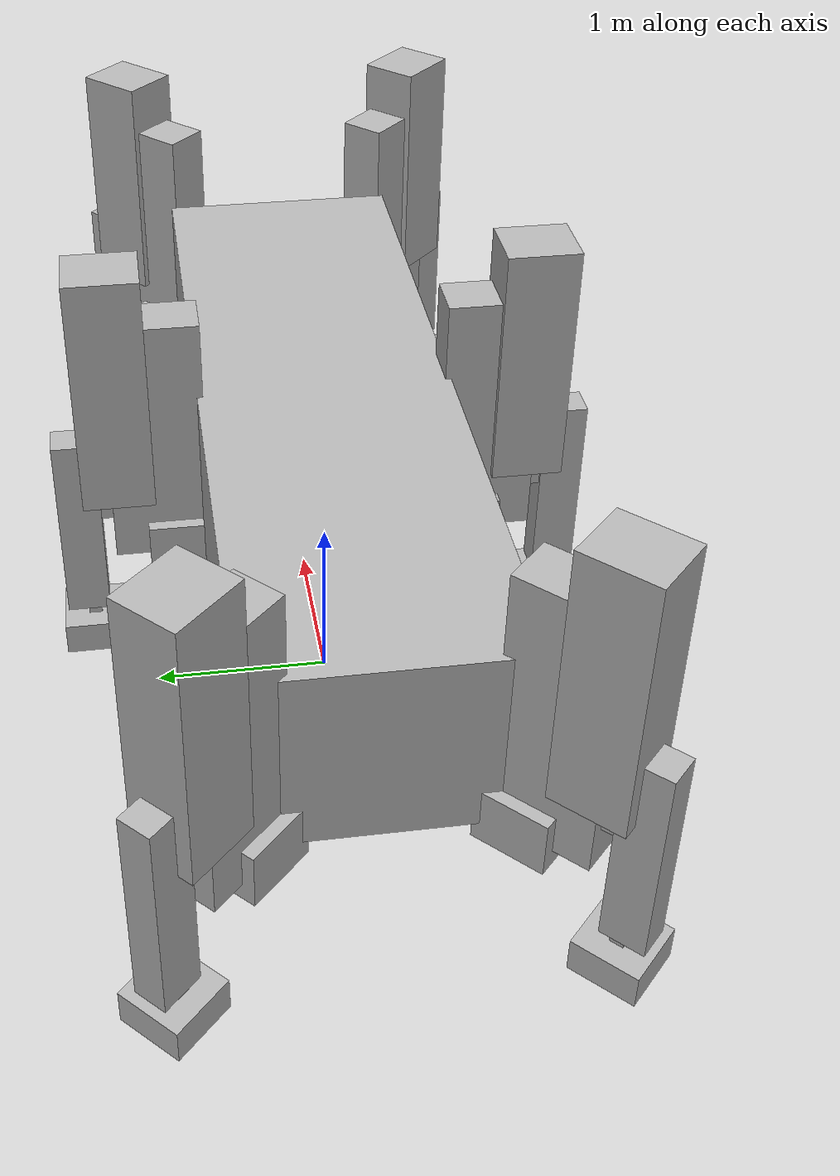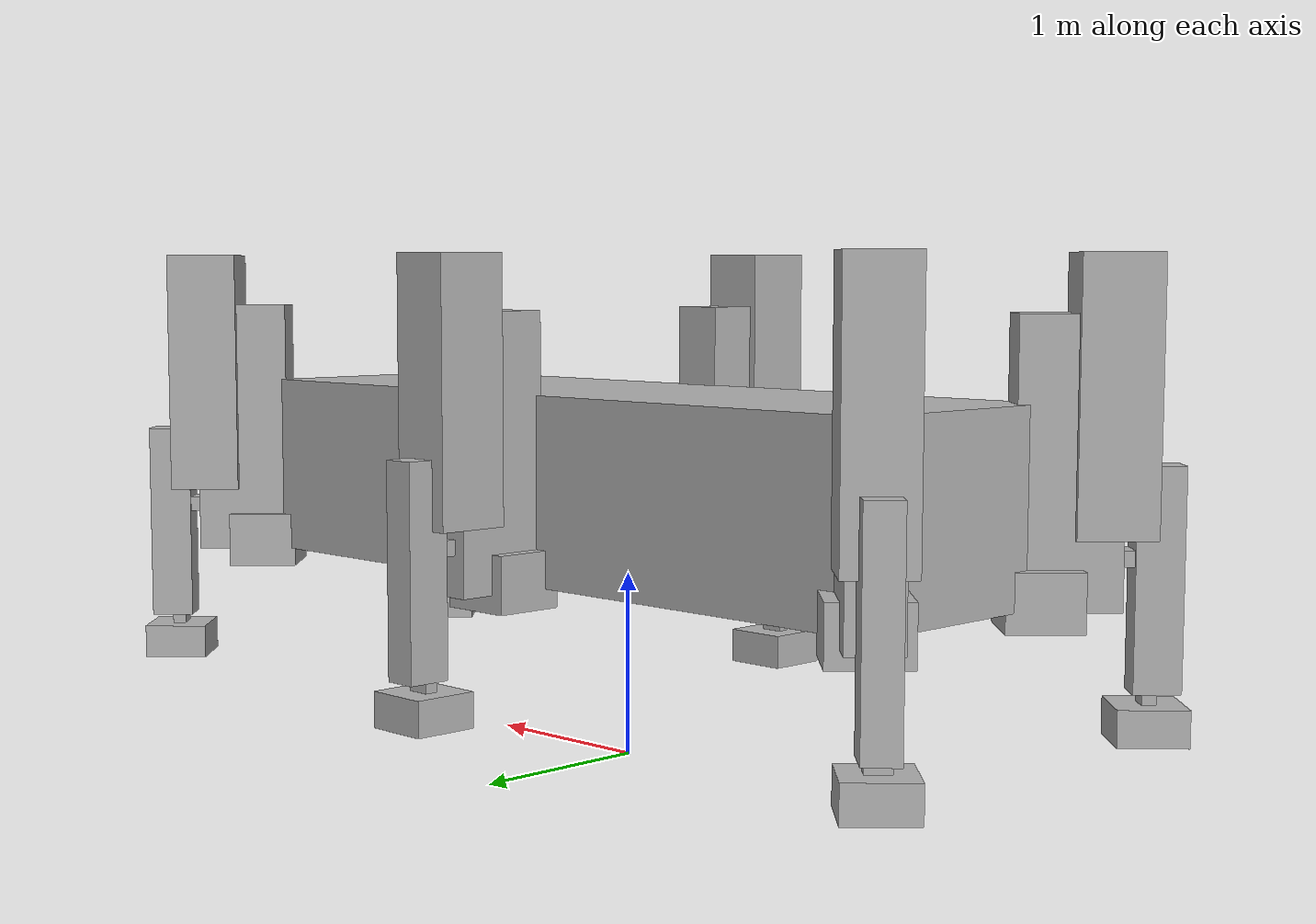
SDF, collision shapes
<?xml version='1.0'?>
<sdf version='1.4'>
  <model name="stompy">
    <static>false</static>
      <link name='body'>
        <pose>0 0 1.495 0 0 0</pose>

        <inertial>
          <mass>1823.41</mass>
          <inertia>
            <ixx>499.7</ixx>
            <ixy>0.019</ixy>
            <ixz>-172.0</ixz>
            <iyy>3253.0</iyy>
            <iyz>0.019</iyz>
            <izz>3049.0</izz>
          </inertia>
        </inertial>
        <collision name='collision'>
          <geometry>
            <box>
              <size>4.47037 1.3716 1.</size>
            </box>
          </geometry>
          <surface>
            <bounce>
              <restitution_coefficient>0</restitution_coefficient>
            </bounce>
            <friction>
              <ode>
                <mu>1000000</mu>
                <mu2>1000000</mu2>
              </ode>
            </friction>
          </surface>
        </collision>

        <visual name='visual'>
          <pose>0 0 -0.495 0 0 0</pose>
          <geometry>
            <mesh>
              <uri>model://stompy/meshes/body.stl</uri>
            </mesh>
          </geometry>
        </visual>
      </link>

      <!-- front left leg -->
      <include>
        <uri>model://stompy_leg</uri>
        <pose>2.35117 0.5842 1 0 0 0.7853</pose>
        <name>fl_leg</name>
      </include>
      <joint name="body_to_fl_leg" type="revolute">
        <child>fl_leg::hip</child>
        <parent>body</parent>
        <axis>
          <xyz>0 0 1</xyz>
        </axis>
      </joint>

      <!-- front right leg -->
      <include>
        <uri>model://stompy_leg</uri>
        <pose>2.35117 -0.5842 1 0 0 -0.7853</pose>
        <name>fr_leg</name>
      </include>
      <joint name="body_to_fr_leg" type="revolute">
        <child>fr_leg::hip</child>
        <parent>body</parent>
        <axis>
          <xyz>0 0 1</xyz>
        </axis>
      </joint>

      <!-- middle left leg -->
      <include>
        <uri>model://stompy_leg</uri>
        <pose>.11597 0.6858 1 0 0 1.5706</pose>
        <name>ml_leg</name>
      </include>
      <joint name="body_to_ml_leg" type="revolute">
        <child>ml_leg::hip</child>
        <parent>body</parent>
        <axis>
          <xyz>0 0 1</xyz>
        </axis>
      </joint>

      <!-- middle right leg -->
      <include>
        <uri>model://stompy_leg</uri>
        <pose>.11597 -0.6858 1 0 0 -1.5706</pose>
        <name>mr_leg</name>
      </include>
      <joint name="body_to_mr_leg" type="revolute">
        <child>mr_leg::hip</child>
        <parent>body</parent>
        <axis>
          <xyz>0 0 1</xyz>
        </axis>
      </joint>

      <!-- rear left leg -->
      <include>
        <uri>model://stompy_leg</uri>
        <pose>-2.1192 0.5842 1 0 0 2.3561</pose>
        <name>rl_leg</name>
      </include>
      <joint name="body_to_rl_leg" type="revolute">
        <child>rl_leg::hip</child>
        <parent>body</parent>
        <axis>
          <xyz>0 0 1</xyz>
        </axis>
      </joint>

      <!-- rear right leg -->
      <include>
        <uri>model://stompy_leg</uri>
        <pose>-2.1192 -0.5842 1 0 0 -2.3561</pose>
        <name>rr_leg</name>
      </include>
      <joint name="body_to_rr_leg" type="revolute">
        <child>rr_leg::hip</child>
        <parent>body</parent>
        <axis>
          <xyz>0 0 1</xyz>
        </axis>
      </joint>
  </model>
</sdf>

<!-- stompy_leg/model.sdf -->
<sdf version='1.4'>
  <model name="stompy_leg">
    <link name='hip'>
      <pose>0 0 0 0 0 0</pose>
      <inertial>
        <pose>0.113861 0.000000 0.033178</pose>
        <mass>28.231</mass>
        <inertia>
          <ixx>0.417</ixx>
          <ixy>0.</ixy>
          <ixz>0.026</ixz>
          <iyy>0.327</iyy>
          <iyz>0.</iyz>
          <izz>0.337</izz>
        </inertia>
      </inertial>
      <collision name='collision'>
        <pose>0.110605 -0.000000 0.042183 0 0 0</pose>
        <geometry>
          <box>
            <size>0.388937 0.411136 0.304614</size>
          </box>
        </geometry>
      </collision>
      <visual name='visual'>
        <geometry>
          <mesh>
            <uri>model://stompy_leg/meshes/hip.stl</uri>
          </mesh>
        </geometry>
      </visual>
    </link>

    <link name="thigh">
      <pose>0.279 0 0 0 0 0</pose>
      <inertial>
          <pose>-0.041166 -0.000000 0.526663 0 0 0</pose>
          <mass>64.053</mass>
          <inertia>
              <ixx>10.62</ixx>
              <ixy>0.</ixy>
              <ixz>-0.34</ixz>
              <iyy>10.92</iyy>
              <iyz>0.</iyz>
              <izz>1.334</izz>
          </inertia>
      </inertial>
      <collision name="collision">
          <pose>-0.047642 -0.000000 0.708695 0 0 0</pose>
          <geometry>
            <box>
              <size>0.525414 0.273050 1.446567</size>
            </box>
          </geometry>
      </collision>
      <visual name="visual">
          <geometry>
            <mesh>
              <uri>model://stompy_leg/meshes/thigh.stl</uri>
            </mesh>
          </geometry>
      </visual>
    </link>
    <joint name="hip_to_thigh" type="revolute">
        <child>thigh</child>
        <parent>hip</parent>
        <axis>
            <xyz>0 1 0</xyz>
            <limit>
                <lower>0.</lower>
                <upper>0.6981</upper>
            </limit>
        </axis>
    </joint>

    <link name="calf_upper">
      <pose>0.423 0 1.364 0 0 0</pose>
      <inertial>
          <pose>0.035283 -0.000004 -0.339513 0 0 0</pose>
          <mass>39.145</mass>
          <inertia>
              <ixx>5.471</ixx>
              <ixy>0.</ixy>
              <ixz>1.148</ixz>
              <iyy>5.636</iyy>
              <iyz>0.</iyz>
              <izz>0.775</izz>
          </inertia>
      </inertial>
      <collision name="collision">
          <pose>0.032845 -0.000014 -0.332317 0 0 0</pose>
          <geometry>
              <box>
                  <size>0.397840 0.346075 1.385496</size>
              </box>
          </geometry>
      </collision>
      <visual name="visual">
          <geometry>
            <mesh>
              <uri>model://stompy_leg/meshes/calf_upper.stl</uri>
            </mesh>
          </geometry>
      </visual>
    </link>
    <joint name="thigh_to_calf_upper" type="revolute">
        <child>calf_upper</child>
        <parent>thigh</parent>
        <axis>
            <xyz>0 1 0</xyz>
            <limit>
                <lower>-0.6981</lower>
                <upper>0</upper>
            </limit>

        </axis>
    </joint>

    <link name="linkage_upper">
      <pose>0.4246 0 0.5455 0 0 0</pose>
      <inertial>
          <pose>0.102916 0.000000 0.000012 0 0 0</pose>
          <mass>3.754</mass>
          <inertia>
              <ixx>0.028</ixx>
              <ixy>0.</ixy>
              <ixz>0.</ixz>
              <iyy>0.022</iyy>
              <iyz>0</iyz>
              <izz>0.009</izz>
          </inertia>
      </inertial>
      <collision name="collision">
          <pose>0.101388 0.000000 -0.000017 0 0 0</pose>
          <geometry>
              <box>
                  <size>0.273050 0.146050 0.082518</size>
              </box>
          </geometry>
      </collision>
      <visual name="visual">
          <geometry>
            <mesh>
              <uri>model://stompy_leg/meshes/calf_link.stl</uri>
            </mesh>
          </geometry>
      </visual>
    </link>
    <joint name="calf_upper_to_linkage_upper" type="revolute">
        <child>linkage_upper</child>
        <parent>calf_upper</parent>
        <axis>
            <xyz>0 1 0</xyz>
        </axis>
    </joint>

    <link name="linkage_lower">
      <pose>0.4618 0 0.243 0 0 0</pose>
      <inertial>
          <pose>0.102916 0.000000 0.000012 0 0 0</pose>
          <mass>3.754</mass>
          <inertia>
              <ixx>0.028</ixx>
              <ixy>0.</ixy>
              <ixz>0.</ixz>
              <iyy>0.022</iyy>
              <iyz>0</iyz>
              <izz>0.009</izz>
          </inertia>
      </inertial>
        <collision name="collision">
          <pose>0.101388 0.000000 -0.000017 0 0 0</pose>
          <geometry>
              <box>
                  <size>0.273050 0.146050 0.082518</size>
              </box>
          </geometry>
      </collision>
      <visual name="visual">
          <geometry>
            <mesh>
              <uri>model://stompy_leg/meshes/calf_link.stl</uri>
            </mesh>
          </geometry>
      </visual>
    </link>
    <joint name="calf_upper_to_linkage_lower" type="revolute">
        <child>linkage_lower</child>
        <parent>calf_upper</parent>
        <axis>
            <xyz>0 1 0</xyz>
        </axis>
    </joint>

    <link name="calf_lower">
      <pose>0.6276 0 0.5455 0 0 0</pose>
      <inertial>
          <pose>0.048243 0.000000 -0.405047 0 0 0</pose>
          <mass>18.983</mass>
          <inertia>
              <ixx>1.827</ixx>
              <ixy>0.</ixy>
              <ixz>0.243</ixz>
              <iyy>1.859</iyy>
              <iyz>0.</iyz>
              <izz>0.145</izz>
          </inertia>
      </inertial>
      <collision name="collision">
          <pose>0.052774 0.000000 -0.409032 0 0 0</pose>
          <geometry>
              <box>
                  <size>0.237352 0.180975 1.122347</size>
              </box>
          </geometry>
      </collision>
      <visual name="visual">
          <geometry>
            <mesh>
              <uri>model://stompy_leg/meshes/calf_lower.stl</uri>
            </mesh>
          </geometry>
      </visual>
    </link>
    <joint name="linkage_upper_to_calf_lower" type="revolute">
        <child>calf_lower</child>
        <parent>linkage_upper</parent>
        <axis>
            <xyz>0 1 0</xyz>
            <limit>
                <lower>0</lower>
                <upper>0.3490</upper>
            </limit>
        </axis>
    </joint>
    <joint name="linkage_lower_to_calf_lower" type="revolute">
        <child>calf_lower</child>
        <pose>0.0371 0 -0.3024 0 0 0</pose>
        <parent>linkage_lower</parent>
        <axis>
            <xyz>0 1 0</xyz>
        </axis>
    </joint>

    <link name="ankle">
      <pose>0.6476 0 -0.4225 0 0 0</pose>
      <inertial>
          <pose>-0.000000 0.000000 -0.016387 0 0 0</pose>
          <mass>1.391</mass>
          <inertia>
              <ixx>0.002</ixx>
              <ixy>0</ixy>
              <ixz>0</ixz>
              <iyy>0.001</iyy>
              <iyz>0</iyz>
              <izz>0.002</izz>
          </inertia>
      </inertial>
      <collision name="collision">
          <pose>-0.000000 -0.000000 -0.017091 0 0 0</pose>
          <geometry>
              <box>
                  <size>0.073025 0.127000 0.100314</size>
              </box>
          </geometry>
      </collision>
      <visual name="visual">
          <geometry>
            <mesh>
              <uri>model://stompy_leg/meshes/ankle.stl</uri>
            </mesh>
          </geometry>
      </visual>
    </link>
    <joint name="calf_lower_to_ankle" type="revolute">
        <child>ankle</child>
        <parent>calf_lower</parent>
        <axis>
            <xyz>0 1 0</xyz>
            <limit>
                <lower>-1.3962</lower>
                <upper>1.3962</upper>
            </limit>
        </axis>
    </joint>

    <link name="foot">
      <pose>0.6476 0 -0.4637 0 0 0</pose>
      <inertial>
          <pose>-0.000000 0.000000 -0.111878 0 0 0</pose>
          <mass>9.307</mass>
          <inertia>
              <ixx>0.069</ixx>
              <ixy>0</ixy>
              <ixz>0</ixz>
              <iyy>0.069</iyy>
              <iyz>0</iyz>
              <izz>0.102</izz>
          </inertia>
      </inertial>
      <collision name="collision">
          <pose>-0.000000 0.000000 -0.111878 0 0 0</pose>
          <geometry>
              <box>
                  <size>0.355474 0.355348 0.188913</size>
              </box>
          </geometry>
      </collision>
      <visual name="visual">
          <geometry>
            <mesh>
              <uri>model://stompy_leg/meshes/foot.stl</uri>
            </mesh>
          </geometry>
      </visual>
    </link>
    <joint name="ankle_to_foot" type="revolute">
        <child>foot</child>
        <parent>ankle</parent>
        <axis>
            <xyz>1 0 0</xyz>
            <limit>
                <lower>-1.3962</lower>
                <upper>1.3962</upper>
            </limit>
        </axis>
    </joint>
  </model>
</sdf>
